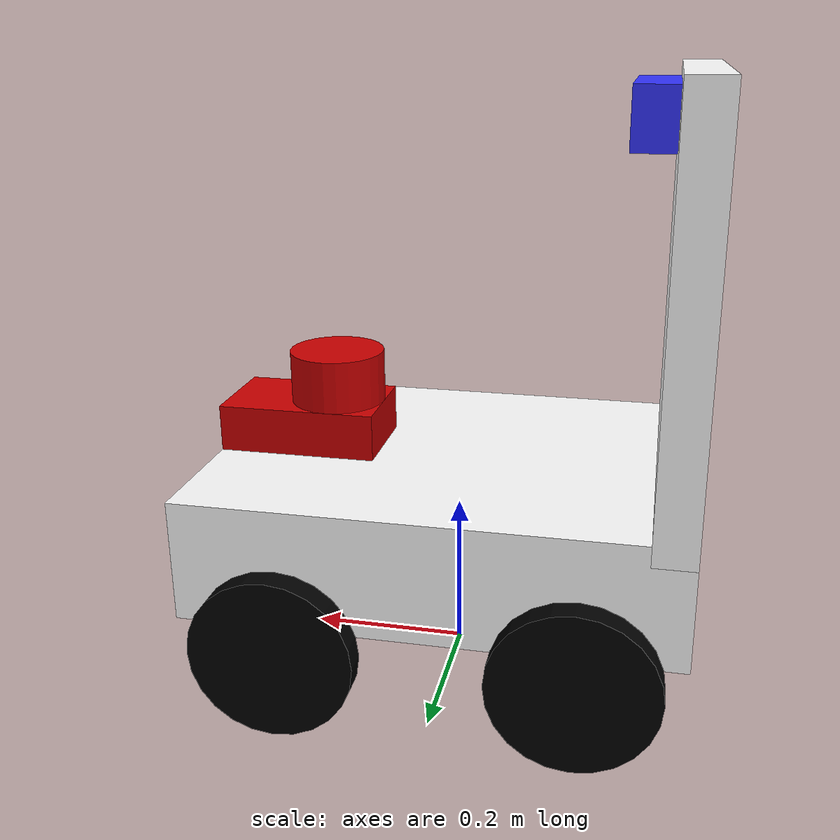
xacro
<?xml version="1.0"?>
<robot xmlns:xacro="http://www.ros.org/wiki/xacro" name="my_robot">

    <material  name="white">
        <color rgba="1 1 1 1"/>
    </material>

    <material  name="Blue">
        <color rgba="0.2 0.2 1 1"/>
    </material>

    <material  name="Red">
        <color rgba="0.8 0.0 0.0 1.0"/>
    </material>

    <material  name="Black">
        <color rgba="0 0 0 1"/>
    </material>

    <link name="base_link">

    </link>

    <!-- CHASSIS LINK -->

    <link name="chassis">
        <inertial>
            <origin xyz="0.0 0.0 0.0"/>
            <mass value="1.0"/>
            <inertia ixx="0.1" ixy="0.0" ixz="0.0" iyy="0.1" iyz="0.0" izz="0.1"/>
        </inertial>
        <visual>
            <origin xyz="0.0 0.0 0.2" />
            <geometry>
                <box size="0.6 0.45 0.15"/>
            </geometry>
            <material name="white"/>
        </visual>
        <collision>
            <origin xyz="0.0 0.0 0.2" rpy="0.0 0.0 0.0"/>
            <geometry>
                <box size="0.6 0.45 0.15"/>
            </geometry>
        </collision>
    </link>

    <joint name="chassis_joint" type="fixed">
        <parent link="base_link"/>
        <child link="chassis"/>
        <axis xyz="-0.1 0.0 0.1"/>
    </joint>

    <link name="chassis_2">
        <inertial>
            <origin xyz="0.0 0.0 0.0" rpy="0.0 0.0 0.0"/>
            <mass value="0.0"/>
            <inertia ixx="0.0" ixy="0.0" ixz="0.0" iyy="0.0" iyz="0.0" izz="0.0"/>
        </inertial>
        <visual >
            <origin xyz="0.0 0.0 0.0" rpy="0.0 0.0 0.0"/>
            <geometry>
                <box size="0.05 0.45 0.5"/>
            </geometry>
            <material name="white"/>
        </visual>
        <collision>
            <origin xyz="0.0 0.0 0.0" rpy="0.0 0.0 0.0"/>
            <geometry>
                <box size="0.0 0.0 0.0"/>
            </geometry>
        </collision>
    </link>

    <joint name="chassis_2" type="fixed">
        <origin xyz="-0.275 0.0 0.5" rpy="0.0 0.0 0.0"/>
        <parent link="base_link"/>
        <child link="chassis_2"/>
        <axis xyz="0.0 0.0 0.0"/>
    </joint>

    <!-- FRIST RIGHT WHEEL LINK -->

    <link name="frist_right_wheel">
        <inertial>
            <origin xyz="0.0 0.0 0.0" rpy="0.0 0.0 0.0"/>
            <mass value="0.0"/>
            <inertia ixx="0.0" ixy="0.0" ixz="0.0" iyy="0.0" iyz="0.0" izz="0.0"/>
        </inertial>
        <visual >
            <origin  rpy="0 1.5707 1.5707"/>
            <geometry>
                <cylinder radius="0.1" length="0.03"/>
            </geometry>
            <material name="Black"/>
        </visual>
        <collision>
            <origin xrpy="0 1.5707 1.5707"/>
            <geometry>
                <cylinder radius=".1" length="0.03"/>
            </geometry>
        </collision>
    </link>

    <joint name="frist_right_wheel_joint" type="revolute">
        <origin xyz="0.175 0.24 0.10" rpy="0.0 0.0 0.0"/>
        <parent link="base_link"/>
        <child link="frist_right_wheel"/>
        <axis xyz="0 0 0"/>
    </joint>

        <!-- SECOND RIGHT WHEEL LINK -->
    <link name="second_right_wheel">
        <inertial>
            <origin rpy="0.0 0.0 0.0"/>
            <mass value="0.0"/>
            <inertia ixx="0.0" ixy="0.0" ixz="0.0" iyy="0.0" iyz="0.0" izz="0.0"/>
        </inertial>
        <visual >
            <origin  rpy="0 1.5707 1.5707"/>
            <geometry>
                <cylinder radius="0.1" length="0.03"/>
            </geometry>
            <material name="Black"/>
        </visual>
        <collision>
            <origin  rpy="0 1.5707 1.5707"/>
            <geometry>
                <cylinder radius=".1" length="0.03"/>
            </geometry>
        </collision>
    </link>

    <joint name="second_right_wheel_joint" type="revolute">
        <origin xyz="-0.175 0.24 0.10" rpy="0.0 0.0 0.0"/>
        <parent link="base_link"/>
        <child link="second_right_wheel"/>
        <axis xyz="0 0 0"/>
    </joint>

    <!-- FRIST LEFT WHEEL LINK -->

    <link name="frist_left_wheel">
        <inertial>
            <origin xyz="0.0 0.0 0.0" rpy="0.0 0.0 0.0"/>
            <mass value="0.0"/>
            <inertia ixx="0.0" ixy="0.0" ixz="0.0" iyy="0.0" iyz="0.0" izz="0.0"/>
        </inertial>
        <visual >
            <origin  rpy="0 1.5707 1.5707"/>
            <geometry>
                <cylinder radius="0.1" length="0.03"/>
            </geometry>
            <material name="Black"/>
        </visual>
        <collision>
            <origin rpy="0 1.5707 1.5707"/>
            <geometry>
                <cylinder radius=".1" length="0.03"/>
            </geometry>
        </collision>
    </link>

    <joint name="frist_left_wheel_joint" type="revolute">
        <origin xyz="0.175 -0.24 0.10" rpy="0.0 0.0 0.0"/>
        <parent link="base_link"/>
        <child link="frist_left_wheel"/>
        <axis xyz="0 0 0"/>
    </joint>

    <!-- SECOND LEFT WHEEL LINK -->

    <link name="second_left_wheel">
        <inertial>
            <origin xyz="0.0 0.0 0.0" rpy="0.0 0.0 0.0"/>
            <mass value="0.0"/>
            <inertia ixx="0.0" ixy="0.0" ixz="0.0" iyy="0.0" iyz="0.0" izz="0.0"/>
        </inertial>
        <visual >
            <origin rpy="0 1.5707 1.5707"/>
            <geometry>
                <cylinder radius="0.1" length="0.03"/>
            </geometry>
            <material name="Black"/>
        </visual>
        <collision>
            <origin rpy="0 1.5707 1.5707"/>
            <geometry>
                <cylinder radius=".1" length="0.03"/>
            </geometry>
        </collision>
    </link>

    <joint name="second_left_wheel_joint" type="revolute">
        <origin xyz="-0.175 -0.24 0.10" rpy="0.0 0.0 0.0"/>
        <parent link="base_link"/>
        <child link="second_left_wheel"/>
        <axis xyz="0 0 0"/>
    </joint>

    <!-- CAMERA LINK -->
    <link name="camera">
        <inertial>
            <origin xyz="0.0 0.0 0.0" rpy="0.0 0.0 0.0"/>
            <mass value="0.0"/>
            <inertia ixx="0.0" ixy="0.0" ixz="0.0" iyy="0.0" iyz="0.0" izz="0.0"/>
        </inertial>
        <visual >
            <origin xyz="0.0 0.0 0.0" rpy="0.0 0.0 0.0"/>
            <geometry>
                <box size="0.050 0.20 0.07"/>
            </geometry>
            <material name="Blue"/>
        </visual>
        <collision>
            <origin xyz="0.0 0.0 0.0" rpy="0.0 0.0 0.0"/>
            <geometry>
                <box size="0.0 0.0 0.0"/>
            </geometry>
        </collision>
    </link>

    <joint name="camera_link_joint" type="fixed">
        <origin xyz="-0.225 0.0 0.7" rpy="0.0 0.0 0.0"/>
        <parent link="base_link"/>
        <child link="camera"/>
        <axis xyz="0.0 0.0 0.0"/>
    </joint>

    <!-- LIDAR LINK -->
    <!-- LIDER BOX LINK -->
     <link name="lider_box">
        <inertial>
            <origin xyz="0.0 0.0 0.0" rpy="0.0 0.0 0.0"/>
            <mass value="0.0"/>
            <inertia ixx="0.0" ixy="0.0" ixz="0.0" iyy="0.0" iyz="0.0" izz="0.0"/>
        </inertial>
        <visual name="Box">
            <origin xyz="0.0 0.0 0.0" rpy="0.0 0.0 0.0"/>
            <geometry>
                <box size="0.2 0.12 0.06"/>
            </geometry>
            <material name="Red"/>

        </visual>
        <collision>
            <origin xyz="0.0 0.0 0.0" rpy="0.0 0.0 0.0"/>
            <geometry>
                <box size="0.2 0.12 0.06"/>
            </geometry>
        </collision>
     </link>

    <joint name="lider_box_joint" type="fixed">
        <origin xyz="0.2 0.0 0.304" rpy="0.0 0.0 0.0"/>
        <parent link="base_link"/>
        <child link="lider_box"/>
        <axis xyz="0.0 0.0 0.0"/>
    </joint>

    <!-- LIDER CYLINDER LINK-->
    <link name="lider_cylinder">
        <inertial>
            <origin xyz="0.0 0.0 0.0" rpy="0.0 0.0 0.0"/>
            <mass value="0.0"/>
            <inertia ixx="0.0" ixy="0.0" ixz="0.0" iyy="0.0" iyz="0.0" izz="0.0"/>
        </inertial>
        <visual name="">
            <geometry>
                <cylinder radius="0.06" length="0.07"/>
            </geometry>
            <material name="Red"/>
        </visual>
        <collision>
            <geometry>
                <cylinder radius="0.06" length="0.07"/>
            </geometry>
        </collision>
    </link>

    <joint name="lider_cylinder_joint" type="fixed">
        <origin xyz="0.16 0.0 0.365" rpy="0.0 0.0 0.0"/>
        <parent link="base_link"/>
        <child link="lider_cylinder"/>
        <axis xyz="0.0 0.0 0.0"/>
        <limit lower="0.0" upper="0.0" effort="0.0" velocity="0.0"/>
    </joint>

</robot>
